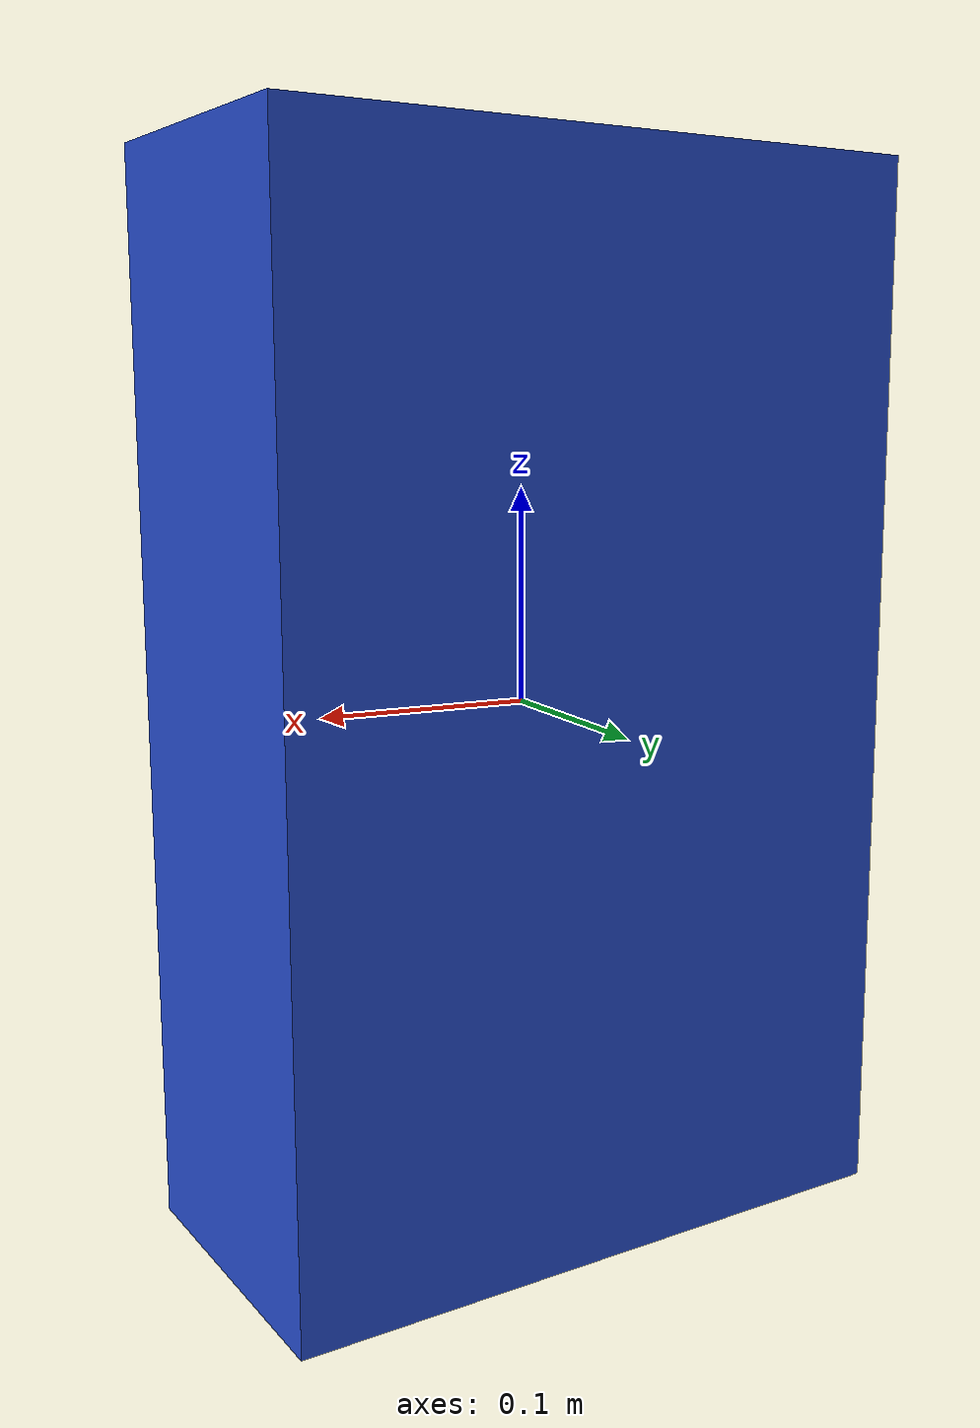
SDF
<sdf version="1.6"><model name="model_8"><link name="link"><pose>0 0 0 0 0 1.672857893985645</pose><gravity>true</gravity><static>true</static><inertial><mass>1.0</mass><inertia><ixx>0.16666</ixx><ixy>0</ixy><ixz>0</ixz><iyy>0.16666</iyy><iyz>0</iyz><izz>0.16666</izz></inertia></inertial><collision name="collision"><geometry><box><size>0.15286689043238197 0.31151404607156463 0.5</size></box></geometry></collision><visual name="visual"><geometry><box><size>0.15286689043238197 0.31151404607156463 0.5</size></box></geometry><material><script><name>Gazebo/Blue</name><uri>file://media/materials/scripts/gazebo.material</uri></script></material></visual></link></model></sdf>
